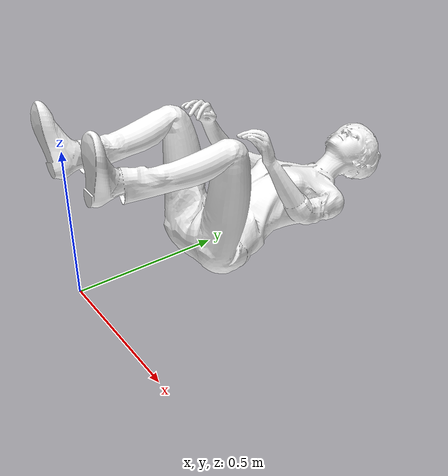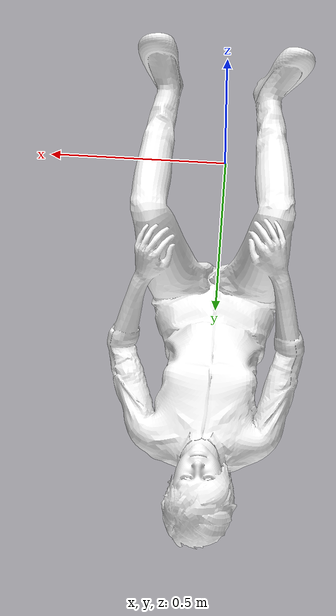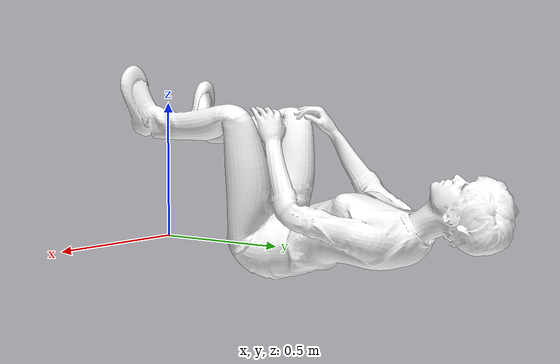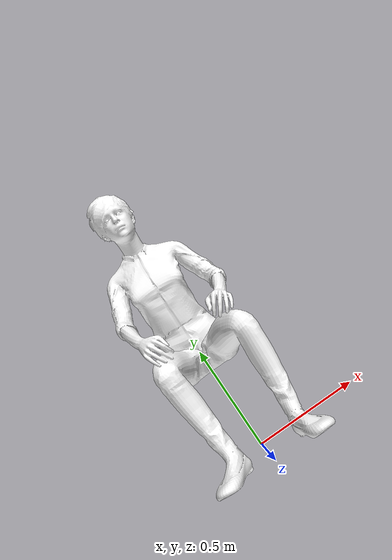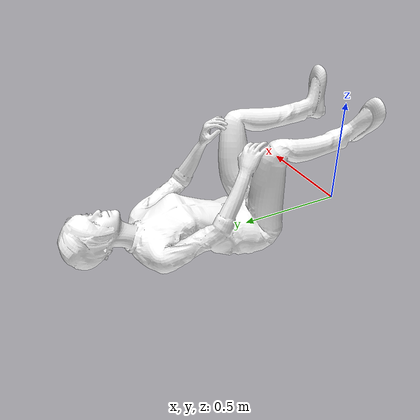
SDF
<?xml version="1.0"?>
<sdf version="1.9">
  <model name="sitting">

    <static>true</static>

    <link name="link">

      <collision name="collision">
        <geometry>
          <box>
            <!-- approximate bounding box: ~0.6m wide, 0.6m deep, 1.2m tall -->
            <size>0.6 0.6 1.2</size>
          </box>
        </geometry>
        <pose>0 0 0.6 0 0 0</pose>
        <surface>
          <friction><ode/></friction>
          <bounce/>
          <contact/>
        </surface>
      </collision>

      <visual name="visual">
        <geometry>
          <mesh>
            <uri>file:///root/exchange/src/robot_factory/models/sitting/meshes/sitting.dae</uri>
            <!-- DAE is in centimeters, scale down to meters -->
            <scale>0.01 0.01 0.01</scale>
          </mesh>
        </geometry>
        <material>
          <diffuse>1 1 1 1</diffuse>
          <specular>0.2 0.2 0.2 1</specular>
          <pbr>
            <metal>
              <albedo_map>file:///root/exchange/src/robot_factory/models/sitting/Ch21_1001_Diffuse.png</albedo_map>
            </metal>
          </pbr>
        </material>
      </visual>

      <inertial>
        <mass>70</mass>
        <inertia>
          <ixx>1</ixx><ixy>0</ixy><ixz>0</ixz>
          <iyy>1</iyy><iyz>0</iyz><izz>1</izz>
        </inertia>
      </inertial>

      <enable_wind>false</enable_wind>
    </link>

    <self_collide>false</self_collide>
  </model>
</sdf>
